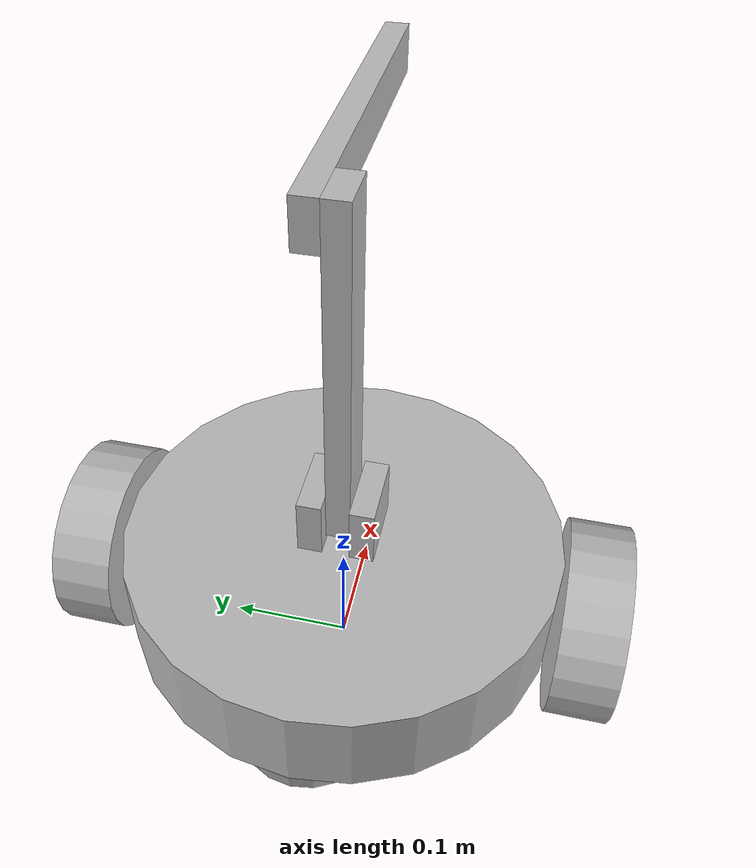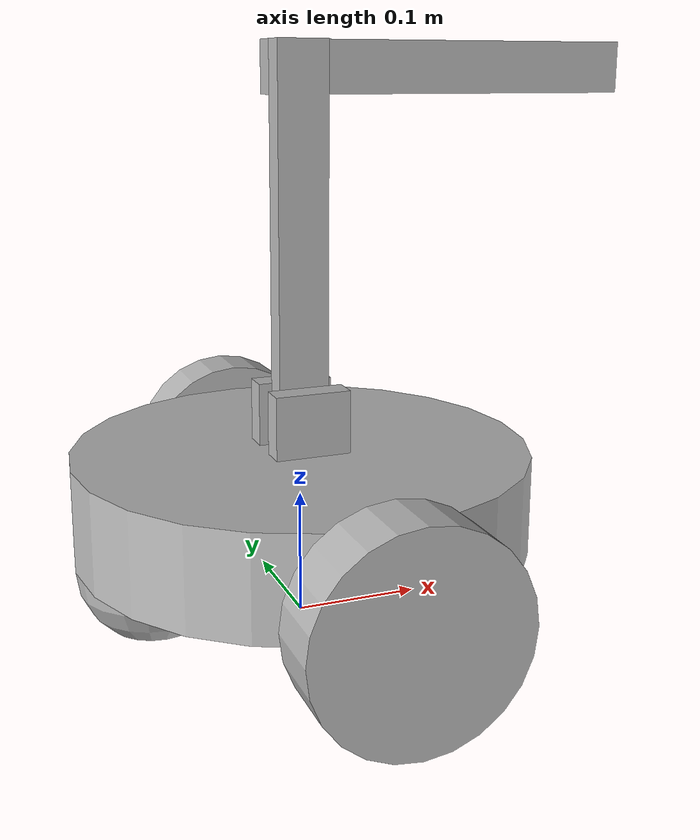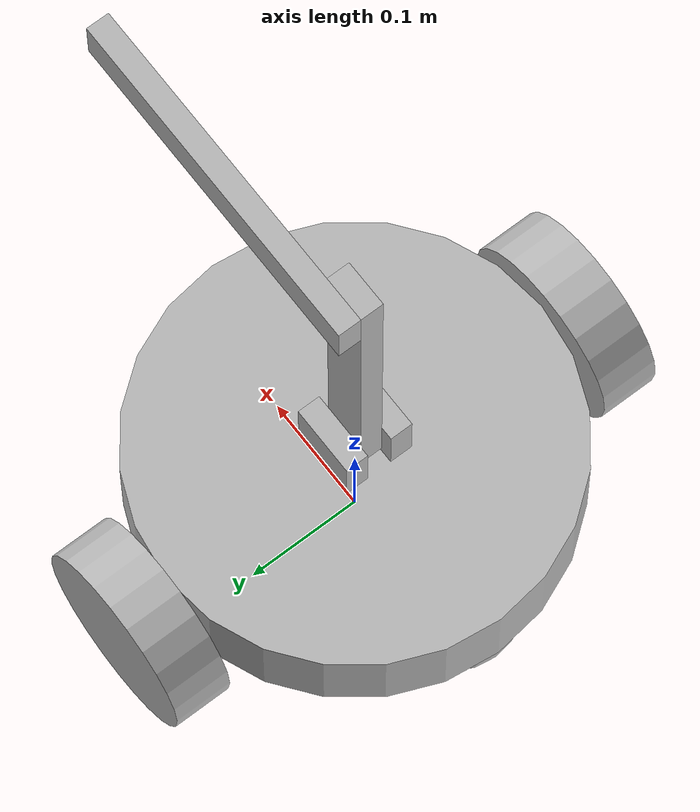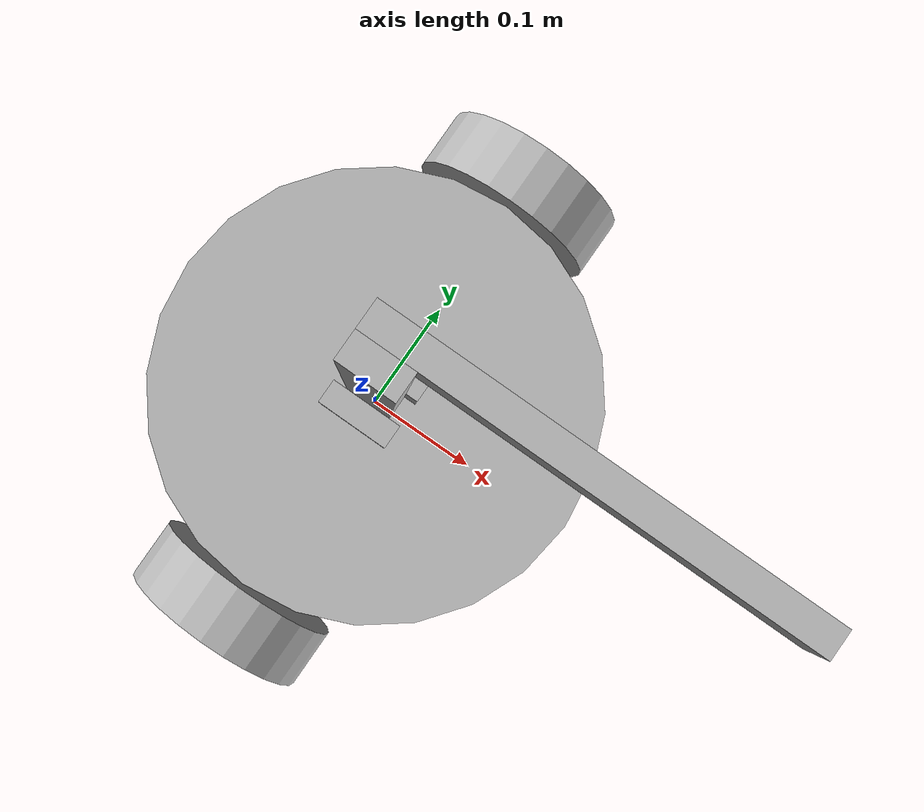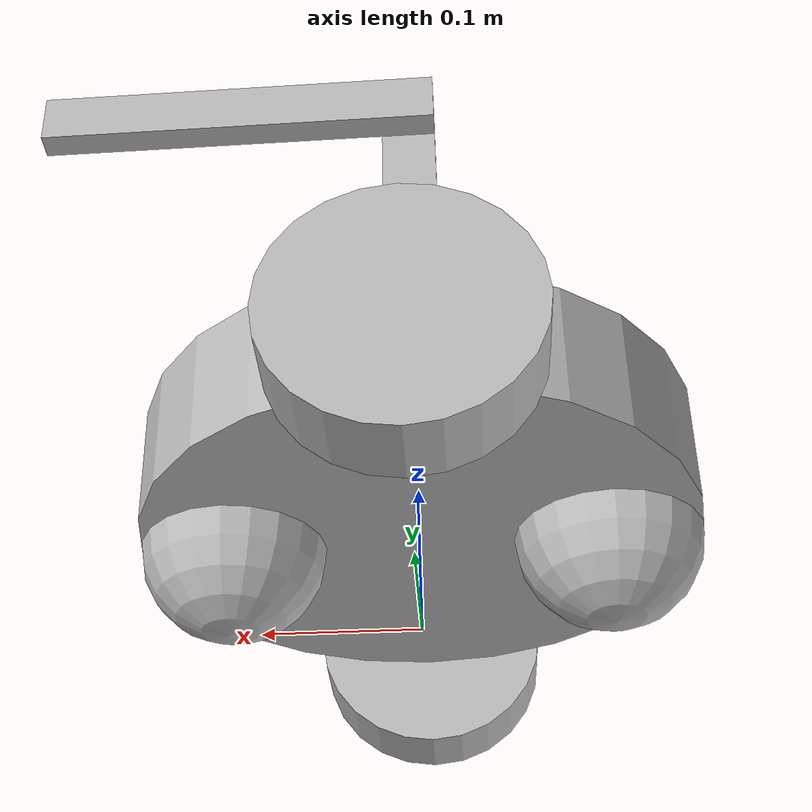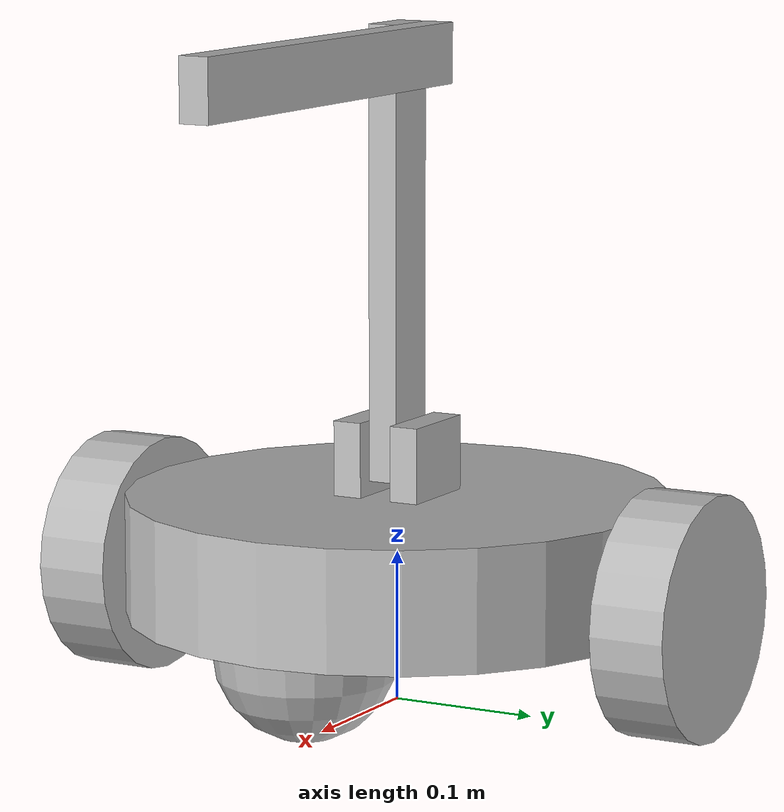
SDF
<?xml version='1.0'?>
<sdf version='1.7'>
  <model name="our_robot">
    <static>false</static>
    <link name='chassis'>
            <pose>0 0 .1 0 0 0</pose>

            <collision name='collision'>
              <geometry>
                <cylinder>
          <radius>.18</radius>
          <length>.08</length>
      </cylinder>
    </geometry>
            </collision>

            <visual name='visual'>
              <geometry>
                <cylinder>
          <radius>.18</radius>
          <length>.08</length>
      </cylinder>
              </geometry>
            </visual>

          <collision name='hinge1_collision'>
            <pose>0 0.021 0.06 0 0 0</pose>
            <geometry>
              <box>
                <size>.06 0.02 0.06</size>
              </box>
            </geometry>
          </collision>

          <visual name='hinge1_visual'>
            <pose>0 0.021 0.06 0 0 0</pose>
            <geometry>
              <box>
                <size>.06 0.02 0.06</size>
              </box>
            </geometry>
          </visual>

          <collision name='hinge2_collision'>
            <pose>0 -0.021 0.06 0 0 0</pose>
            <geometry>
              <box>
                <size>.06 0.02 0.06</size>
              </box>
            </geometry>
          </collision>

          <visual name='hinge2_visual'>
            <pose>0 -0.021 0.06 0 0 0</pose>
            <geometry>
              <box>
                <size>.06 -0.02 0.06</size>
              </box>
            </geometry>
          </visual>

          <collision name='joint_collision'>
            <pose>0.12 0 -0.04 0 0 0</pose>
            <geometry>
                <sphere>
                <radius>.06</radius>
              </sphere>
            </geometry>

            <surface>
              <friction>
                <ode>
                  <mu>0</mu>
                  <mu2>0</mu2>
                  <slip1>1.0</slip1>
                  <slip2>1.0</slip2>
                </ode>
              </friction>
            </surface>
          </collision>

          <visual name='caster_visual'>
            <pose>0.12 0 -0.04 0 0 0</pose>
            <geometry>
              <sphere>
                <radius>.06</radius>
              </sphere>
            </geometry>
          </visual>

          <collision name='joint2_collision'>
            <pose>-0.12 0 -0.04 0 0 0</pose>
            <geometry>
                <sphere>
                <radius>.06</radius>
              </sphere>
            </geometry>

            <surface>
              <friction>
                <ode>
                  <mu>0</mu>
                  <mu2>0</mu2>
                  <slip1>1.0</slip1>
                  <slip2>1.0</slip2>
                </ode>
              </friction>
            </surface>
          </collision>

          <visual name='caster2_visual'>
            <pose>-0.12 0 -0.04 0 0 0</pose>
            <geometry>
              <sphere>
                <radius>.06</radius>
              </sphere>
            </geometry>
          </visual>

        </link>

        <link name="left_wheel">
        <pose>0.0 0.206 0.08 0 1.5707 1.5707</pose>
        <collision name="collision">
          <geometry>
            <cylinder>
              <radius>.08</radius>
              <length>.05</length>
            </cylinder>
          </geometry>
        </collision>
        <visual name="visual">
          <geometry>
            <cylinder>
              <radius>.08</radius>
              <length>.05</length>
            </cylinder>
          </geometry>
        </visual>
      </link>

      <link name="right_wheel">
        <pose>0.0 -0.206 0.08 0 1.5707 1.5707</pose>
        <collision name="collision">
          <geometry>
            <cylinder>
              <radius>.08</radius>
              <length>.05</length>
            </cylinder>
          </geometry>
        </collision>
        <visual name="visual">
          <geometry>
            <cylinder>
              <radius>.08</radius>
              <length>.05</length>
            </cylinder>
          </geometry>
        </visual>
      </link>

      <link name="lower_arm">
        <mass>0.10</mass>
        <gravity>0</gravity>
        <inertia>
            <ixx>0.001</ixx>
            <ixy>0.001</ixy>
            <ixz>0.001</ixz>
            <iyy>0.001</iyy>
            <iyz>0.001</iyz>
            <izz>0.001</izz>
        </inertia>
        <collision name='arm1_collision'>
            <pose>0 0.0 0.3 0 0 0</pose>
            <geometry>
              <box>
                <size>.04 0.02 0.30</size>
              </box>
            </geometry>
        </collision>
        <self_collide>1</self_collide>
        <visual name='arm1_visual'>
          <pose>0 0.0 0.3 0 0 0</pose>
          <geometry>
            <box>
              <size>.04 0.02 0.30</size>
            </box>
          </geometry>
        </visual>
      </link>

      <link name="upper_arm">
        <mass>0.10</mass>
        <gravity>0</gravity>
      <inertia>
          <ixx>0.001</ixx>
          <ixy>0.001</ixy>
          <ixz>0.001</ixz>
          <iyy>0.001</iyy>
          <iyz>0.001</iyz>
          <izz>0.001</izz>
      </inertia>
        <collision name='arm2_collision'>
            <pose>0.13 0.02 0.43 0 0 0</pose>
            <geometry>
              <box>
                <size>0.30 0.02 0.04</size>
              </box>
            </geometry>
          </collision>
          <self_collide>1</self_collide>
          <visual name='arm2_visual'>
            <pose>0.13 0.02 0.43 0 0 0</pose>
            <geometry>
              <box>
                <size>0.30 0.02 0.04</size>
              </box>
            </geometry>
          </visual>
      </link>

      <joint type="revolute" name="left_wheel_hinge">
        <pose>0 0.0 -0.02 0 0 0</pose>
        <child>left_wheel</child>
        <parent>chassis</parent>
        <axis>
          <xyz>0 1 0</xyz>
        </axis>
      </joint>

      <joint type="revolute" name="right_wheel_hinge">
        <pose>0 0 0.02 0 0 0</pose>
        <child>right_wheel</child>
        <parent>chassis</parent>
        <axis>
          <xyz>0 1 0</xyz>
        </axis>
      </joint>

      <joint type="revolute" name="lower_arm_hinge">
        <pose>0 0 0.17 0 0 0</pose>
        <origin xyz="0 0 0.17" rpy="0 0 0" />
        <child>lower_arm</child>
        <parent>chassis</parent>
        <axis>
          <xyz>0 1 0</xyz>
        </axis>
        <dynamics damping="0.7" />
        <limit lower="0" upper="1.50" />
      </joint>

      <joint type="revolute" name="upper_arm_hinge">
        <pose>0 0 0.43 0 0 0</pose>
        <origin xyz="0 0 0.43" rpy="0 0 0" />
        <child>upper_arm</child>
        <parent>lower_arm</parent>
        <axis>
          <xyz>0 1 0</xyz>
        </axis>
        <dynamics damping="0.7"/>
        <limit lower="-1.50" upper="0" />
      </joint>

      <!-- Position config -->
      <ros2_control name='GazeboSystem' type="system">
      <hardware>
        <plugin>gazebo_ros2_control/GazeboSystem</plugin>
      </hardware>
      <joint name="left_wheel_hinge">
        <command_interface name="velocity"/>
        <state_interface name="position"/>
        <state_interface name="velocity"/>
        <state_interface name="acceleration"/>
      </joint>
      <joint name="right_wheel_hinge">
        <command_interface name="velocity"/>
        <state_interface name="position"/>
        <state_interface name="velocity"/>
        <state_interface name="acceleration"/>
      </joint>
      </ros2_control>

      <!-- ROS Control plugin for gazebo -->
      <gazebo>
        <plugin name="gazebo_ros2_control" filename="libgazebo_ros2_control.so">
          <robotNamespace>/our_robot</robotNamespace>
          <parameters>/home/jesse/Documents/pdm/catkin_ws/src/robot_world/config.yml</parameters>
        </plugin>
      </gazebo>
  </model>
</sdf>
